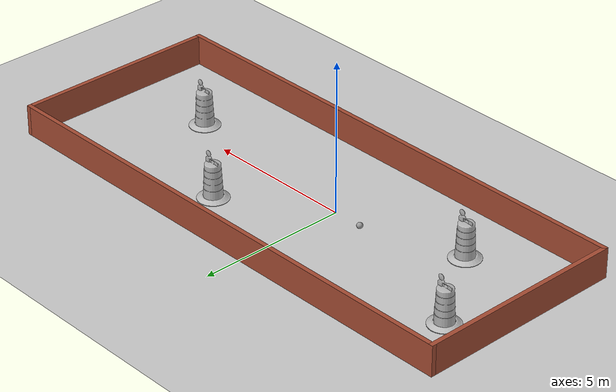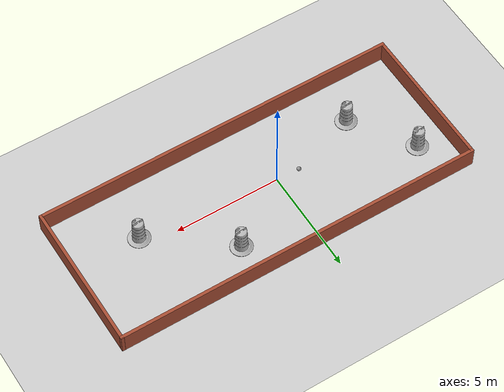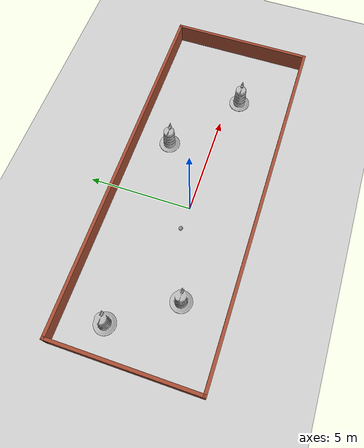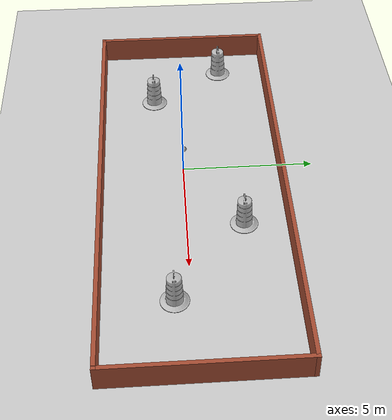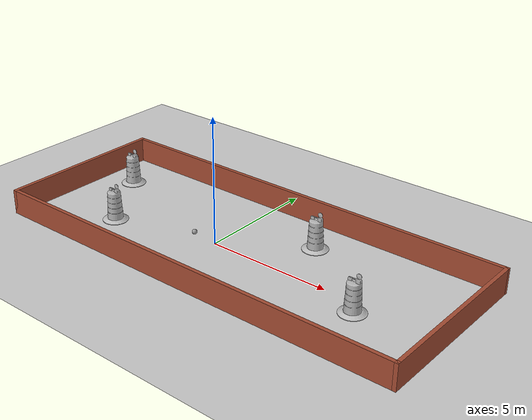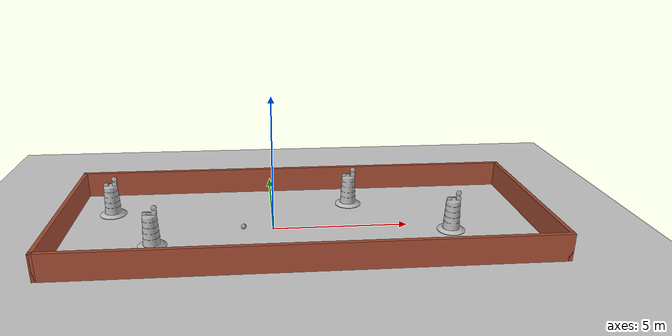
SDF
<sdf version="1.6">
 <world name="default">
  <light name="sun" type="directional">
   <pose>0 0 15 0 -0 0</pose>
   <diffuse>1 1 1 1</diffuse>
   <specular>0.1 0.1 0.1 1</specular>
   <attenuation>
    <range>1000</range>
    <constant>0.9</constant>
    <linear>0.01</linear>
    <quadratic>0.001</quadratic>
   </attenuation>
   <direction>-0.5 0.5 -1</direction>
  </light>
  <model name="ground_plane">
   <static>1</static>
   <link name="link">
    <collision name="collision">
     <geometry><plane><normal>0 0 1</normal><size>100 100</size></plane></geometry>
     <surface><friction><ode><mu>100</mu><mu2>50</mu2></ode></friction></surface>
    </collision>
    <visual name="visual">
     <transparency>1</transparency>
     <cast_shadows>0</cast_shadows>
     <geometry><plane><normal>0 0 1</normal><size>100 100</size></plane></geometry>
     <material>
      <script><uri>file://media/materials/scripts/gazebo.material</uri><name>Gazebo/Grey</name></script>
     </material>
    </visual>
   </link>
  </model>
  <gravity>0 0 -9.8</gravity>
  <magnetic_field>6e-06 2.3e-05 -4.2e-05</magnetic_field>
  <atmosphere type="adiabatic"/>
  <physics name="default_physics" default="0" type="ode">
   <max_step_size>0.001</max_step_size>
   <real_time_factor>1</real_time_factor>
   <real_time_update_rate>1000</real_time_update_rate>
  </physics>
  <scene><ambient>0.4 0.4 0.4 1</ambient><background>0.7 0.7 0.7 1</background><shadows>1</shadows></scene>
  <spherical_coordinates>
   <surface_model>EARTH_WGS84</surface_model>
   <latitude_deg>0</latitude_deg>
   <longitude_deg>0</longitude_deg>
   <elevation>0</elevation>
   <heading_deg>0</heading_deg>
  </spherical_coordinates>
  <model name="Arena">
   <pose>1.08844 0.299472 0 0 -0 0</pose>
   <link name="Wall_1">
    <collision name="Wall_1_Collision">
     <geometry><box><size>7 0.15 1</size></box></geometry>
     <pose>0 0 0.5 0 -0 0</pose>
    </collision>
    <visual name="Wall_1_Visual">
     <pose>0 0 0.5 0 -0 0</pose>
     <geometry><box><size>7 0.15 1</size></box></geometry>
     <material>
      <script><uri>file://media/materials/scripts/gazebo.material</uri><name>Gazebo/Bricks</name></script>
      <ambient>0.760784 0.662745 0.627451 1</ambient>
     </material>
    </visual>
    <pose>-8.675 0 0 0 0 -1.5708</pose>
   </link>
   <link name="Wall_2">
    <collision name="Wall_2_Collision">
     <geometry><box><size>17.5 0.15 1</size></box></geometry>
     <pose>0 0 0.5 0 -0 0</pose>
    </collision>
    <visual name="Wall_2_Visual">
     <pose>0 0 0.5 0 -0 0</pose>
     <geometry><box><size>17.5 0.15 1</size></box></geometry>
     <material>
      <script><uri>file://media/materials/scripts/gazebo.material</uri><name>Gazebo/Bricks</name></script>
      <ambient>0.760784 0.662745 0.627451 1</ambient>
     </material>
    </visual>
    <pose>0 -3.425 0 0 -0 0</pose>
   </link>
   <link name="Wall_3">
    <collision name="Wall_3_Collision">
     <geometry><box><size>7 0.15 1</size></box></geometry>
     <pose>0 0 0.5 0 -0 0</pose>
    </collision>
    <visual name="Wall_3_Visual">
     <pose>0 0 0.5 0 -0 0</pose>
     <geometry><box><size>7 0.15 1</size></box></geometry>
     <material>
      <script><uri>file://media/materials/scripts/gazebo.material</uri><name>Gazebo/Bricks</name></script>
      <ambient>0.760784 0.662745 0.627451 1</ambient>
     </material>
    </visual>
    <pose>8.675 0 0 0 -0 1.5708</pose>
   </link>
   <link name="Wall_4">
    <collision name="Wall_4_Collision">
     <geometry><box><size>17.5 0.15 1</size></box></geometry>
     <pose>0 0 0.5 0 -0 0</pose>
    </collision>
    <visual name="Wall_4_Visual">
     <pose>0 0 0.5 0 -0 0</pose>
     <geometry><box><size>17.5 0.15 1</size></box></geometry>
     <material>
      <script><uri>file://media/materials/scripts/gazebo.material</uri><name>Gazebo/Bricks</name></script>
      <ambient>0.760784 0.662745 0.627451 1</ambient>
     </material>
    </visual>
    <pose>0 3.425 0 0 -0 3.14159</pose>
   </link>
   <static>1</static>
  </model>
  <model name="Ball">
   <link name="link">
    <inertial>
     <mass>1</mass>
     <inertia><ixx>0.1</ixx><ixy>0</ixy><ixz>0</ixz><iyy>0.1</iyy><iyz>0</iyz><izz>0.1</izz></inertia>
    </inertial>
    <visual name="visual">
     <geometry><sphere><radius>0.1</radius></sphere></geometry>
     <material>
      <script><name>Gazebo/Grey</name><uri>file://media/materials/scripts/gazebo.material</uri></script>
      <ambient>1 1 1 1</ambient>
      <diffuse>1 1 1 1</diffuse>
      <specular>1 1 1 1</specular>
      <emissive>0 0 0 1</emissive>
      <shader type="vertex"><normal_map>__default__</normal_map></shader>
      <lighting>0</lighting>
     </material>
    </visual>
    <collision name="collision">
     <geometry><sphere><radius>0.098</radius></sphere></geometry>
     <surface>
      <friction>
       <ode><mu>1</mu><mu2>1</mu2><fdir1>0 0 0</fdir1><slip1>0</slip1><slip2>0</slip2></ode>
       <torsional>
        <coefficient>1</coefficient>
        <patch_radius>0</patch_radius>
        <surface_radius>0</surface_radius>
        <use_patch_radius>1</use_patch_radius>
        <ode><slip>0</slip></ode>
       </torsional>
      </friction>
      <bounce><restitution_coefficient>0</restitution_coefficient><threshold>1e+06</threshold></bounce>
      <contact>
       <collide_without_contact>0</collide_without_contact>
       <collide_without_contact_bitmask>1</collide_without_contact_bitmask>
       <collide_bitmask>1</collide_bitmask>
       <ode>
        <soft_cfm>0</soft_cfm>
        <soft_erp>0.2</soft_erp>
        <kp>1e+13</kp>
        <kd>1</kd>
        <max_vel>0.01</max_vel>
        <min_depth>0</min_depth>
       </ode>
       <bullet>
        <split_impulse>1</split_impulse>
        <split_impulse_penetration_threshold>-0.01</split_impulse_penetration_threshold>
        <soft_cfm>0</soft_cfm>
        <soft_erp>0.2</soft_erp>
        <kp>1e+13</kp>
        <kd>1</kd>
       </bullet>
      </contact>
     </surface>
    </collision>
   </link>
   <static>0</static>
   <pose>-1.08998 0.079924 0.098 0 -0 0</pose>
  </model>
  <model name="Construction Barrel">
   <static>1</static>
   <link name="link">
    <inertial>
     <pose>0 0 0.4 0 -0 0</pose>
     <mass>500</mass>
     <inertia><ixx>51.2096</ixx><iyy>51.2096</iyy><izz>25</izz><ixy>0</ixy><ixz>0</ixz><iyz>0</iyz></inertia>
    </inertial>
    <collision name="collision">
     <geometry>
      <mesh><uri>model://construction_barrel/meshes/construction_barrel.dae</uri><scale>1 1 1</scale></mesh>
     </geometry>
    </collision>
    <visual name="visual">
     <geometry>
      <mesh><uri>model://construction_barrel/meshes/construction_barrel.dae</uri><scale>1 1 1</scale></mesh>
     </geometry>
    </visual>
   </link>
   <pose>3.08417 2.08431 0 0 -0 0</pose>
  </model>
  <model name="Construction Barrel_0">
   <static>1</static>
   <link name="link">
    <inertial>
     <pose>0 0 0.4 0 -0 0</pose>
     <mass>500</mass>
     <inertia><ixx>51.2096</ixx><iyy>51.2096</iyy><izz>25</izz><ixy>0</ixy><ixz>0</ixz><iyz>0</iyz></inertia>
    </inertial>
    <collision name="collision">
     <geometry>
      <mesh><uri>model://construction_barrel/meshes/construction_barrel.dae</uri><scale>1 1 1</scale></mesh>
     </geometry>
    </collision>
    <visual name="visual">
     <geometry>
      <mesh><uri>model://construction_barrel/meshes/construction_barrel.dae</uri><scale>1 1 1</scale></mesh>
     </geometry>
    </visual>
   </link>
   <pose>-4.26734 -1.0194 0 0 -0 0</pose>
  </model>
  <model name="Construction Barrel_1">
   <static>1</static>
   <link name="link">
    <inertial>
     <pose>0 0 0.4 0 -0 0</pose>
     <mass>500</mass>
     <inertia><ixx>51.2096</ixx><iyy>51.2096</iyy><izz>25</izz><ixy>0</ixy><ixz>0</ixz><iyz>0</iyz></inertia>
    </inertial>
    <collision name="collision">
     <geometry>
      <mesh><uri>model://construction_barrel/meshes/construction_barrel.dae</uri><scale>1 1 1</scale></mesh>
     </geometry>
    </collision>
    <visual name="visual">
     <geometry>
      <mesh><uri>model://construction_barrel/meshes/construction_barrel.dae</uri><scale>1 1 1</scale></mesh>
     </geometry>
    </visual>
   </link>
   <pose>6.53492 -0.56661 0 0 -0 0</pose>
  </model>
  <model name="Construction Barrel_2">
   <static>1</static>
   <link name="link">
    <inertial>
     <pose>0 0 0.4 0 -0 0</pose>
     <mass>500</mass>
     <inertia><ixx>51.2096</ixx><iyy>51.2096</iyy><izz>25</izz><ixy>0</ixy><ixz>0</ixz><iyz>0</iyz></inertia>
    </inertial>
    <collision name="collision">
     <geometry>
      <mesh><uri>model://construction_barrel/meshes/construction_barrel.dae</uri><scale>1 1 1</scale></mesh>
     </geometry>
    </collision>
    <visual name="visual">
     <geometry>
      <mesh><uri>model://construction_barrel/meshes/construction_barrel.dae</uri><scale>1 1 1</scale></mesh>
     </geometry>
    </visual>
   </link>
   <pose>-6.16084 1.77162 0 0 -0 0</pose>
  </model>
 </world>
</sdf>
